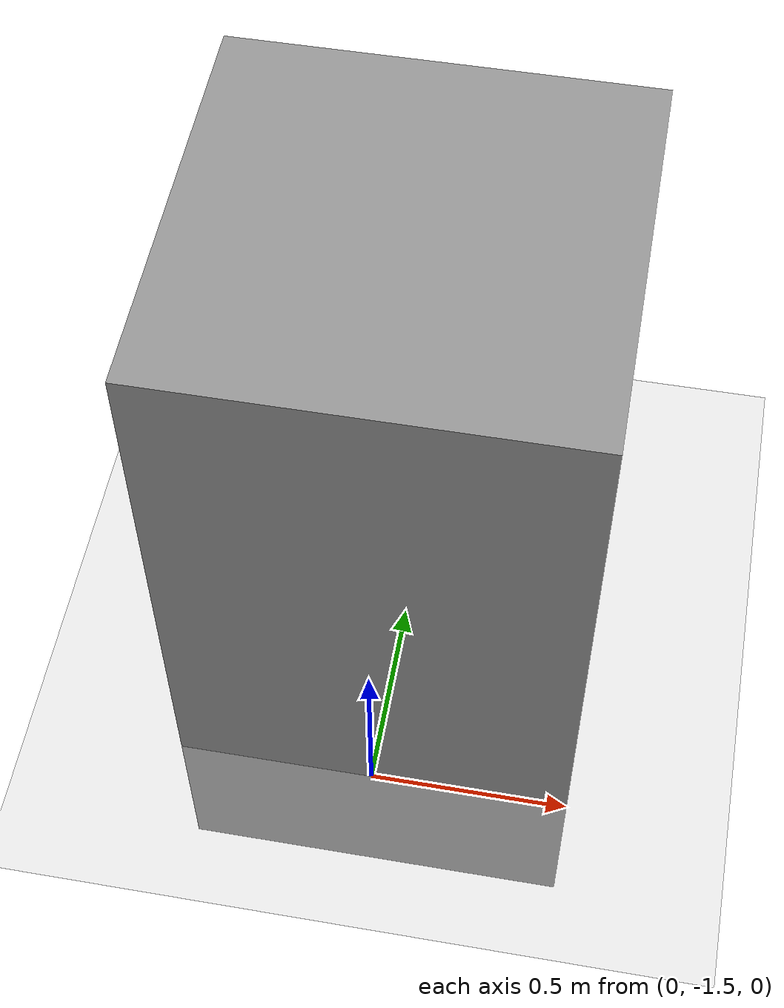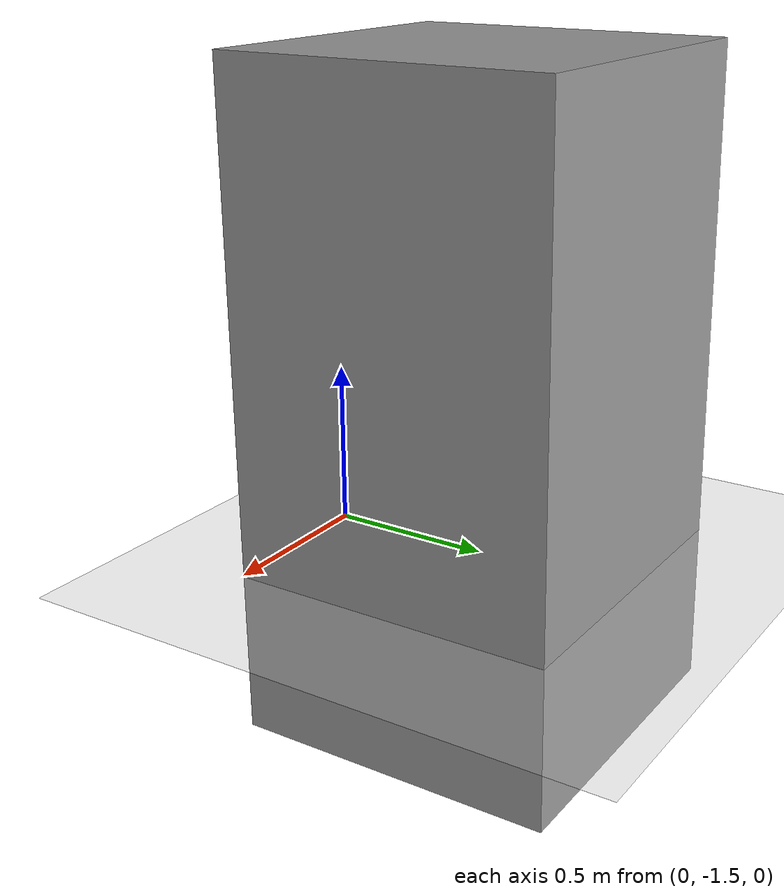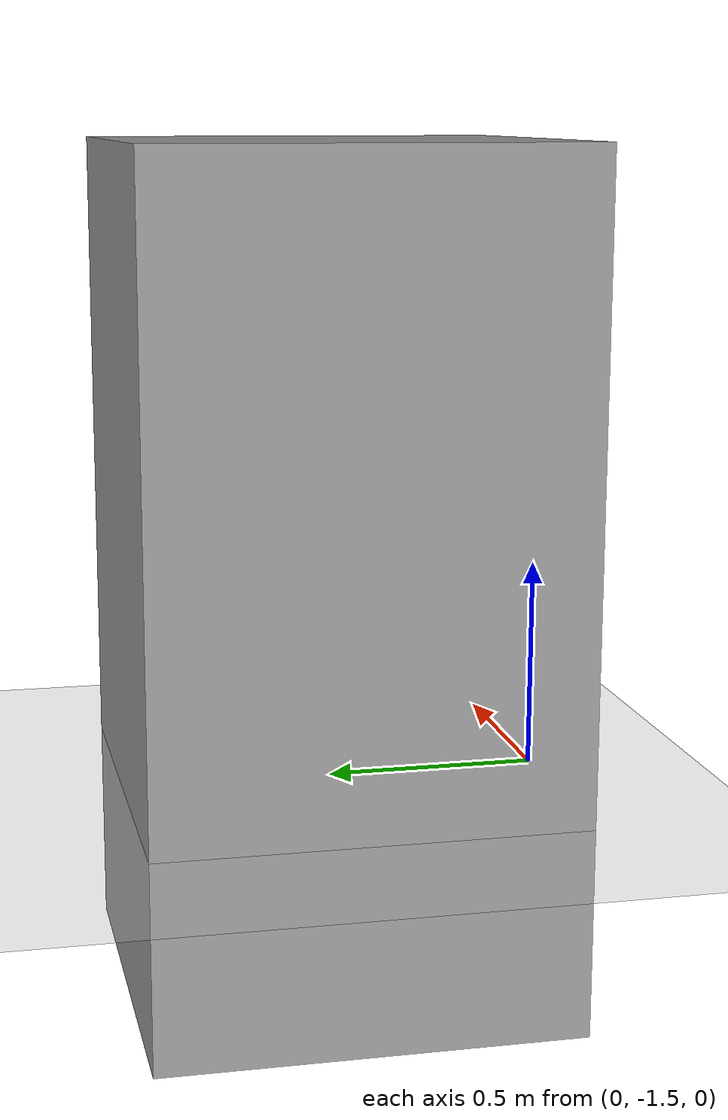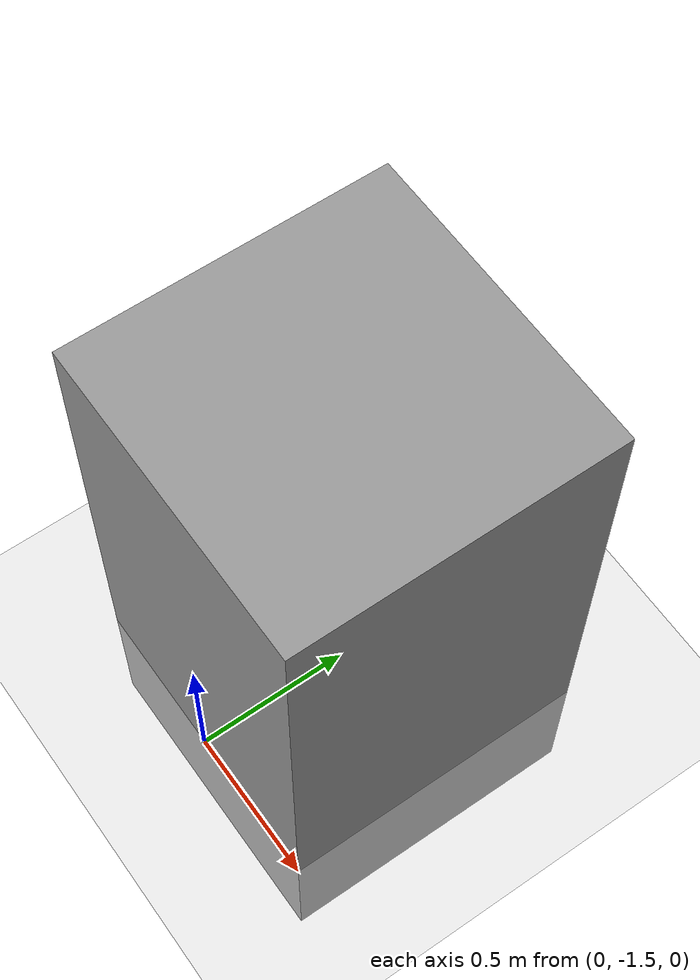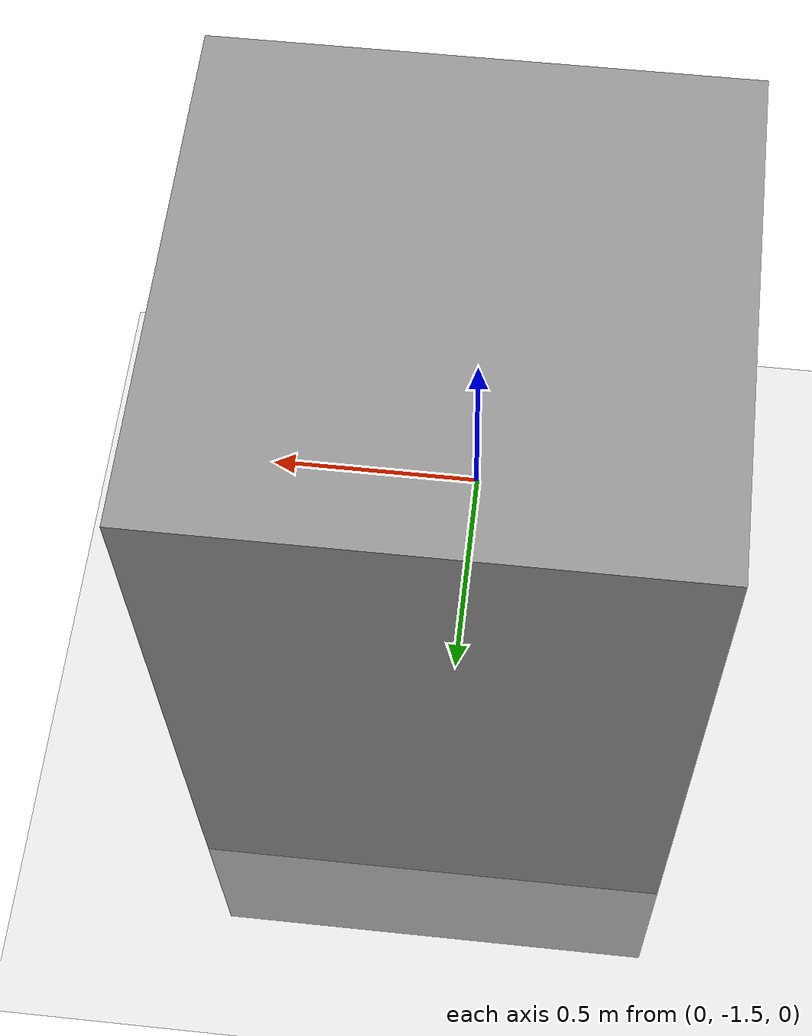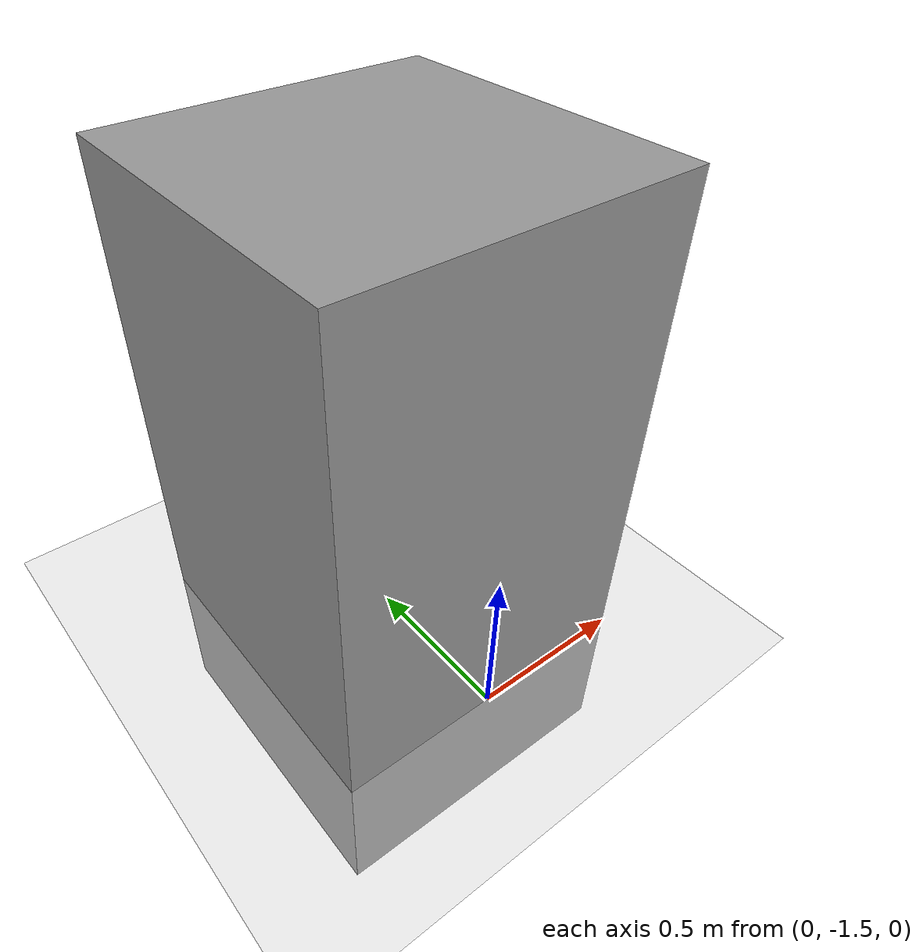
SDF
<sdf version="1.4">
 <world name="default">
  <light name="sun" type="directional">
   <pose>0 0 10 0 -0 0</pose>
   <diffuse>0.8 0.8 0.8 1</diffuse>
   <specular>0.2 0.2 0.2 1</specular>
   <attenuation>
    <range>1000</range>
    <constant>0.9</constant>
    <linear>0.01</linear>
    <quadratic>0.001</quadratic>
   </attenuation>
   <direction>-0.5 0.1 -0.9</direction>
  </light>
  <model name="ground_plane">
   <static>1</static>
   <link name="link">
    <collision name="collision">
     <geometry><plane><normal>0 0 1</normal><size>100 100</size></plane></geometry>
     <surface><friction><ode><mu>100</mu><mu2>50</mu2></ode></friction></surface>
    </collision>
    <visual name="visual">
     <cast_shadows>0</cast_shadows>
     <geometry><plane><normal>0 0 1</normal><size>100 100</size></plane></geometry>
     <material>
      <script><uri>file://media/materials/scripts/gazebo.material</uri><name>Gazebo/Grey</name></script>
     </material>
    </visual>
    <velocity_decay><linear>0</linear><angular>0</angular></velocity_decay>
   </link>
  </model>
  <physics type="ode">
   <max_step_size>0.001</max_step_size>
   <real_time_factor>1</real_time_factor>
   <real_time_update_rate>1000</real_time_update_rate>
   <gravity>0 0 -15.0</gravity>
  </physics>
  <scene><ambient>0.4 0.4 0.4 1</ambient><background>0.7 0.7 0.7 1</background><shadows>1</shadows></scene>
  <spherical_coordinates>
   <surface_model>EARTH_WGS84</surface_model>
   <latitude_deg>0</latitude_deg>
   <longitude_deg>0</longitude_deg>
   <elevation>0</elevation>
   <heading_deg>0</heading_deg>
  </spherical_coordinates>
  <model name="unit_box_0">
   <pose>-0 -1 0.5 0 -0 0</pose>
   <link name="link">
    <inertial>
     <mass>1</mass>
     <inertia><ixx>1</ixx><ixy>0</ixy><ixz>0</ixz><iyy>1</iyy><iyz>0</iyz><izz>2</izz></inertia>
    </inertial>
    <collision name="collision"><geometry><box><size>1.000000 1.000000 2</size></box></geometry></collision>
    <visual name="visual">
     <geometry><box><size>1.000000 1.000000 2</size></box></geometry>
     <material>
      <script><uri>file://media/materials/scripts/gazebo.material</uri><name>Gazebo/Grey</name></script>
     </material>
    </visual>
    <velocity_decay><linear>0</linear><angular>0</angular></velocity_decay>
   </link>
   <static>true</static>
  </model>
  <model name="unit_box_1">
   <pose>-0 -1 0.5 0 -0 0</pose>
   <link name="link">
    <inertial>
     <mass>1</mass>
     <inertia><ixx>1</ixx><ixy>0</ixy><ixz>0</ixz><iyy>1</iyy><iyz>0</iyz><izz>2</izz></inertia>
    </inertial>
    <collision name="collision"><geometry><box><size>1.000000 1.000000 2</size></box></geometry></collision>
    <visual name="visual">
     <geometry><box><size>1.000000 1.000000 2</size></box></geometry>
     <material>
      <script><uri>file://media/materials/scripts/gazebo.material</uri><name>Gazebo/Grey</name></script>
     </material>
    </visual>
    <velocity_decay><linear>0</linear><angular>0</angular></velocity_decay>
   </link>
   <static>true</static>
  </model>
  <model name="unit_box_2">
   <pose>-0 -1 0.5 0 -0 0</pose>
   <link name="link">
    <inertial>
     <mass>1</mass>
     <inertia><ixx>1</ixx><ixy>0</ixy><ixz>0</ixz><iyy>1</iyy><iyz>0</iyz><izz>2</izz></inertia>
    </inertial>
    <collision name="collision"><geometry><box><size>1.000000 1.000000 2</size></box></geometry></collision>
    <visual name="visual">
     <geometry><box><size>1.000000 1.000000 2</size></box></geometry>
     <material>
      <script><uri>file://media/materials/scripts/gazebo.material</uri><name>Gazebo/Grey</name></script>
     </material>
    </visual>
    <velocity_decay><linear>0</linear><angular>0</angular></velocity_decay>
   </link>
   <static>true</static>
  </model>
  <model name="unit_box_3">
   <pose>-0 -1 0.5 0 -0 0</pose>
   <link name="link">
    <inertial>
     <mass>1</mass>
     <inertia><ixx>1</ixx><ixy>0</ixy><ixz>0</ixz><iyy>1</iyy><iyz>0</iyz><izz>2</izz></inertia>
    </inertial>
    <collision name="collision"><geometry><box><size>1.000000 1.000000 2</size></box></geometry></collision>
    <visual name="visual">
     <geometry><box><size>1.000000 1.000000 2</size></box></geometry>
     <material>
      <script><uri>file://media/materials/scripts/gazebo.material</uri><name>Gazebo/Grey</name></script>
     </material>
    </visual>
    <velocity_decay><linear>0</linear><angular>0</angular></velocity_decay>
   </link>
   <static>true</static>
  </model>
  <model name="unit_box_4">
   <pose>-0 -1 0.5 0 -0 0</pose>
   <link name="link">
    <inertial>
     <mass>1</mass>
     <inertia><ixx>1</ixx><ixy>0</ixy><ixz>0</ixz><iyy>1</iyy><iyz>0</iyz><izz>2</izz></inertia>
    </inertial>
    <collision name="collision"><geometry><box><size>1.000000 1.000000 2</size></box></geometry></collision>
    <visual name="visual">
     <geometry><box><size>1.000000 1.000000 2</size></box></geometry>
     <material>
      <script><uri>file://media/materials/scripts/gazebo.material</uri><name>Gazebo/Grey</name></script>
     </material>
    </visual>
    <velocity_decay><linear>0</linear><angular>0</angular></velocity_decay>
   </link>
   <static>true</static>
  </model>
  <model name="unit_box_5">
   <pose>-0 -1 0.5 0 -0 0</pose>
   <link name="link">
    <inertial>
     <mass>1</mass>
     <inertia><ixx>1</ixx><ixy>0</ixy><ixz>0</ixz><iyy>1</iyy><iyz>0</iyz><izz>2</izz></inertia>
    </inertial>
    <collision name="collision"><geometry><box><size>1.000000 1.000000 2</size></box></geometry></collision>
    <visual name="visual">
     <geometry><box><size>1.000000 1.000000 2</size></box></geometry>
     <material>
      <script><uri>file://media/materials/scripts/gazebo.material</uri><name>Gazebo/Grey</name></script>
     </material>
    </visual>
    <velocity_decay><linear>0</linear><angular>0</angular></velocity_decay>
   </link>
   <static>true</static>
  </model>
  <model name="unit_box_6">
   <pose>-0 -1 0.5 0 -0 0</pose>
   <link name="link">
    <inertial>
     <mass>1</mass>
     <inertia><ixx>1</ixx><ixy>0</ixy><ixz>0</ixz><iyy>1</iyy><iyz>0</iyz><izz>2</izz></inertia>
    </inertial>
    <collision name="collision"><geometry><box><size>1.000000 1.000000 2</size></box></geometry></collision>
    <visual name="visual">
     <geometry><box><size>1.000000 1.000000 2</size></box></geometry>
     <material>
      <script><uri>file://media/materials/scripts/gazebo.material</uri><name>Gazebo/Grey</name></script>
     </material>
    </visual>
    <velocity_decay><linear>0</linear><angular>0</angular></velocity_decay>
   </link>
   <static>true</static>
  </model>
  <model name="unit_box_7">
   <pose>-0 -1 0.5 0 -0 0</pose>
   <link name="link">
    <inertial>
     <mass>1</mass>
     <inertia><ixx>1</ixx><ixy>0</ixy><ixz>0</ixz><iyy>1</iyy><iyz>0</iyz><izz>2</izz></inertia>
    </inertial>
    <collision name="collision"><geometry><box><size>1.000000 1.000000 2</size></box></geometry></collision>
    <visual name="visual">
     <geometry><box><size>1.000000 1.000000 2</size></box></geometry>
     <material>
      <script><uri>file://media/materials/scripts/gazebo.material</uri><name>Gazebo/Grey</name></script>
     </material>
    </visual>
    <velocity_decay><linear>0</linear><angular>0</angular></velocity_decay>
   </link>
   <static>true</static>
  </model>
  <model name="unit_box_8">
   <pose>-0 -1 0.5 0 -0 0</pose>
   <link name="link">
    <inertial>
     <mass>1</mass>
     <inertia><ixx>1</ixx><ixy>0</ixy><ixz>0</ixz><iyy>1</iyy><iyz>0</iyz><izz>2</izz></inertia>
    </inertial>
    <collision name="collision"><geometry><box><size>1.000000 1.000000 2</size></box></geometry></collision>
    <visual name="visual">
     <geometry><box><size>1.000000 1.000000 2</size></box></geometry>
     <material>
      <script><uri>file://media/materials/scripts/gazebo.material</uri><name>Gazebo/Grey</name></script>
     </material>
    </visual>
    <velocity_decay><linear>0</linear><angular>0</angular></velocity_decay>
   </link>
   <static>true</static>
  </model>
  <model name="unit_box_9">
   <pose>-0 -1 0.5 0 -0 0</pose>
   <link name="link">
    <inertial>
     <mass>1</mass>
     <inertia><ixx>1</ixx><ixy>0</ixy><ixz>0</ixz><iyy>1</iyy><iyz>0</iyz><izz>2</izz></inertia>
    </inertial>
    <collision name="collision"><geometry><box><size>1.000000 1.000000 2</size></box></geometry></collision>
    <visual name="visual">
     <geometry><box><size>1.000000 1.000000 2</size></box></geometry>
     <material>
      <script><uri>file://media/materials/scripts/gazebo.material</uri><name>Gazebo/Grey</name></script>
     </material>
    </visual>
    <velocity_decay><linear>0</linear><angular>0</angular></velocity_decay>
   </link>
   <static>true</static>
  </model>
  <model name="unit_box_10">
   <pose>-0 -1 0.5 0 -0 0</pose>
   <link name="link">
    <inertial>
     <mass>1</mass>
     <inertia><ixx>1</ixx><ixy>0</ixy><ixz>0</ixz><iyy>1</iyy><iyz>0</iyz><izz>2</izz></inertia>
    </inertial>
    <collision name="collision"><geometry><box><size>1.000000 1.000000 2</size></box></geometry></collision>
    <visual name="visual">
     <geometry><box><size>1.000000 1.000000 2</size></box></geometry>
     <material>
      <script><uri>file://media/materials/scripts/gazebo.material</uri><name>Gazebo/Grey</name></script>
     </material>
    </visual>
    <velocity_decay><linear>0</linear><angular>0</angular></velocity_decay>
   </link>
   <static>true</static>
  </model>
  <model name="unit_box_11">
   <pose>-0 -1 0.5 0 -0 0</pose>
   <link name="link">
    <inertial>
     <mass>1</mass>
     <inertia><ixx>1</ixx><ixy>0</ixy><ixz>0</ixz><iyy>1</iyy><iyz>0</iyz><izz>2</izz></inertia>
    </inertial>
    <collision name="collision"><geometry><box><size>1.000000 1.000000 2</size></box></geometry></collision>
    <visual name="visual">
     <geometry><box><size>1.000000 1.000000 2</size></box></geometry>
     <material>
      <script><uri>file://media/materials/scripts/gazebo.material</uri><name>Gazebo/Grey</name></script>
     </material>
    </visual>
    <velocity_decay><linear>0</linear><angular>0</angular></velocity_decay>
   </link>
   <static>true</static>
  </model>
  <model name="unit_box_12">
   <pose>-0 -1 0.5 0 -0 0</pose>
   <link name="link">
    <inertial>
     <mass>1</mass>
     <inertia><ixx>1</ixx><ixy>0</ixy><ixz>0</ixz><iyy>1</iyy><iyz>0</iyz><izz>2</izz></inertia>
    </inertial>
    <collision name="collision"><geometry><box><size>1.000000 1.000000 2</size></box></geometry></collision>
    <visual name="visual">
     <geometry><box><size>1.000000 1.000000 2</size></box></geometry>
     <material>
      <script><uri>file://media/materials/scripts/gazebo.material</uri><name>Gazebo/Grey</name></script>
     </material>
    </visual>
    <velocity_decay><linear>0</linear><angular>0</angular></velocity_decay>
   </link>
   <static>true</static>
  </model>
  <model name="unit_box_13">
   <pose>-0 -1 0.5 0 -0 0</pose>
   <link name="link">
    <inertial>
     <mass>1</mass>
     <inertia><ixx>1</ixx><ixy>0</ixy><ixz>0</ixz><iyy>1</iyy><iyz>0</iyz><izz>2</izz></inertia>
    </inertial>
    <collision name="collision"><geometry><box><size>1.000000 1.000000 2</size></box></geometry></collision>
    <visual name="visual">
     <geometry><box><size>1.000000 1.000000 2</size></box></geometry>
     <material>
      <script><uri>file://media/materials/scripts/gazebo.material</uri><name>Gazebo/Grey</name></script>
     </material>
    </visual>
    <velocity_decay><linear>0</linear><angular>0</angular></velocity_decay>
   </link>
   <static>true</static>
  </model>
  <model name="unit_box_14">
   <pose>-0 -1 0.5 0 -0 0</pose>
   <link name="link">
    <inertial>
     <mass>1</mass>
     <inertia><ixx>1</ixx><ixy>0</ixy><ixz>0</ixz><iyy>1</iyy><iyz>0</iyz><izz>2</izz></inertia>
    </inertial>
    <collision name="collision"><geometry><box><size>1.000000 1.000000 2</size></box></geometry></collision>
    <visual name="visual">
     <geometry><box><size>1.000000 1.000000 2</size></box></geometry>
     <material>
      <script><uri>file://media/materials/scripts/gazebo.material</uri><name>Gazebo/Grey</name></script>
     </material>
    </visual>
    <velocity_decay><linear>0</linear><angular>0</angular></velocity_decay>
   </link>
   <static>true</static>
  </model>
  <model name="unit_box_15">
   <pose>-0 -1 0.5 0 -0 0</pose>
   <link name="link">
    <inertial>
     <mass>1</mass>
     <inertia><ixx>1</ixx><ixy>0</ixy><ixz>0</ixz><iyy>1</iyy><iyz>0</iyz><izz>2</izz></inertia>
    </inertial>
    <collision name="collision"><geometry><box><size>1.000000 1.000000 2</size></box></geometry></collision>
    <visual name="visual">
     <geometry><box><size>1.000000 1.000000 2</size></box></geometry>
     <material>
      <script><uri>file://media/materials/scripts/gazebo.material</uri><name>Gazebo/Grey</name></script>
     </material>
    </visual>
    <velocity_decay><linear>0</linear><angular>0</angular></velocity_decay>
   </link>
   <static>true</static>
  </model>
  <model name="unit_box_16">
   <pose>-0 -1 0.5 0 -0 0</pose>
   <link name="link">
    <inertial>
     <mass>1</mass>
     <inertia><ixx>1</ixx><ixy>0</ixy><ixz>0</ixz><iyy>1</iyy><iyz>0</iyz><izz>2</izz></inertia>
    </inertial>
    <collision name="collision"><geometry><box><size>1.000000 1.000000 2</size></box></geometry></collision>
    <visual name="visual">
     <geometry><box><size>1.000000 1.000000 2</size></box></geometry>
     <material>
      <script><uri>file://media/materials/scripts/gazebo.material</uri><name>Gazebo/Grey</name></script>
     </material>
    </visual>
    <velocity_decay><linear>0</linear><angular>0</angular></velocity_decay>
   </link>
   <static>true</static>
  </model>
  <model name="unit_box_17">
   <pose>-0 -1 0.5 0 -0 0</pose>
   <link name="link">
    <inertial>
     <mass>1</mass>
     <inertia><ixx>1</ixx><ixy>0</ixy><ixz>0</ixz><iyy>1</iyy><iyz>0</iyz><izz>2</izz></inertia>
    </inertial>
    <collision name="collision"><geometry><box><size>1.000000 1.000000 2</size></box></geometry></collision>
    <visual name="visual">
     <geometry><box><size>1.000000 1.000000 2</size></box></geometry>
     <material>
      <script><uri>file://media/materials/scripts/gazebo.material</uri><name>Gazebo/Grey</name></script>
     </material>
    </visual>
    <velocity_decay><linear>0</linear><angular>0</angular></velocity_decay>
   </link>
   <static>true</static>
  </model>
  <model name="unit_box_18">
   <pose>-0 -1 0.5 0 -0 0</pose>
   <link name="link">
    <inertial>
     <mass>1</mass>
     <inertia><ixx>1</ixx><ixy>0</ixy><ixz>0</ixz><iyy>1</iyy><iyz>0</iyz><izz>2</izz></inertia>
    </inertial>
    <collision name="collision"><geometry><box><size>1.000000 1.000000 2</size></box></geometry></collision>
    <visual name="visual">
     <geometry><box><size>1.000000 1.000000 2</size></box></geometry>
     <material>
      <script><uri>file://media/materials/scripts/gazebo.material</uri><name>Gazebo/Grey</name></script>
     </material>
    </visual>
    <velocity_decay><linear>0</linear><angular>0</angular></velocity_decay>
   </link>
   <static>true</static>
  </model>
  <model name="unit_box_19">
   <pose>-0 -1 0.5 0 -0 0</pose>
   <link name="link">
    <inertial>
     <mass>1</mass>
     <inertia><ixx>1</ixx><ixy>0</ixy><ixz>0</ixz><iyy>1</iyy><iyz>0</iyz><izz>2</izz></inertia>
    </inertial>
    <collision name="collision"><geometry><box><size>1.000000 1.000000 2</size></box></geometry></collision>
    <visual name="visual">
     <geometry><box><size>1.000000 1.000000 2</size></box></geometry>
     <material>
      <script><uri>file://media/materials/scripts/gazebo.material</uri><name>Gazebo/Grey</name></script>
     </material>
    </visual>
    <velocity_decay><linear>0</linear><angular>0</angular></velocity_decay>
   </link>
   <static>true</static>
  </model>
  <model name="unit_box_20">
   <pose>-0 -1 0.5 0 -0 0</pose>
   <link name="link">
    <inertial>
     <mass>1</mass>
     <inertia><ixx>1</ixx><ixy>0</ixy><ixz>0</ixz><iyy>1</iyy><iyz>0</iyz><izz>2</izz></inertia>
    </inertial>
    <collision name="collision"><geometry><box><size>1.000000 1.000000 2</size></box></geometry></collision>
    <visual name="visual">
     <geometry><box><size>1.000000 1.000000 2</size></box></geometry>
     <material>
      <script><uri>file://media/materials/scripts/gazebo.material</uri><name>Gazebo/Grey</name></script>
     </material>
    </visual>
    <velocity_decay><linear>0</linear><angular>0</angular></velocity_decay>
   </link>
   <static>true</static>
  </model>
  <model name="unit_box_21">
   <pose>-0 -1 0.5 0 -0 0</pose>
   <link name="link">
    <inertial>
     <mass>1</mass>
     <inertia><ixx>1</ixx><ixy>0</ixy><ixz>0</ixz><iyy>1</iyy><iyz>0</iyz><izz>2</izz></inertia>
    </inertial>
    <collision name="collision"><geometry><box><size>1.000000 1.000000 2</size></box></geometry></collision>
    <visual name="visual">
     <geometry><box><size>1.000000 1.000000 2</size></box></geometry>
     <material>
      <script><uri>file://media/materials/scripts/gazebo.material</uri><name>Gazebo/Grey</name></script>
     </material>
    </visual>
    <velocity_decay><linear>0</linear><angular>0</angular></velocity_decay>
   </link>
   <static>true</static>
  </model>
  <model name="unit_box_22">
   <pose>-0 -1 0.5 0 -0 0</pose>
   <link name="link">
    <inertial>
     <mass>1</mass>
     <inertia><ixx>1</ixx><ixy>0</ixy><ixz>0</ixz><iyy>1</iyy><iyz>0</iyz><izz>2</izz></inertia>
    </inertial>
    <collision name="collision"><geometry><box><size>1.000000 1.000000 2</size></box></geometry></collision>
    <visual name="visual">
     <geometry><box><size>1.000000 1.000000 2</size></box></geometry>
     <material>
      <script><uri>file://media/materials/scripts/gazebo.material</uri><name>Gazebo/Grey</name></script>
     </material>
    </visual>
    <velocity_decay><linear>0</linear><angular>0</angular></velocity_decay>
   </link>
   <static>true</static>
  </model>
  <model name="unit_box_23">
   <pose>-0 -1 0.5 0 -0 0</pose>
   <link name="link">
    <inertial>
     <mass>1</mass>
     <inertia><ixx>1</ixx><ixy>0</ixy><ixz>0</ixz><iyy>1</iyy><iyz>0</iyz><izz>2</izz></inertia>
    </inertial>
    <collision name="collision"><geometry><box><size>1.000000 1.000000 2</size></box></geometry></collision>
    <visual name="visual">
     <geometry><box><size>1.000000 1.000000 2</size></box></geometry>
     <material>
      <script><uri>file://media/materials/scripts/gazebo.material</uri><name>Gazebo/Grey</name></script>
     </material>
    </visual>
    <velocity_decay><linear>0</linear><angular>0</angular></velocity_decay>
   </link>
   <static>true</static>
  </model>
  <model name="unit_box_24">
   <pose>-0 -1 0.5 0 -0 0</pose>
   <link name="link">
    <inertial>
     <mass>1</mass>
     <inertia><ixx>1</ixx><ixy>0</ixy><ixz>0</ixz><iyy>1</iyy><iyz>0</iyz><izz>2</izz></inertia>
    </inertial>
    <collision name="collision"><geometry><box><size>1.000000 1.000000 2</size></box></geometry></collision>
    <visual name="visual">
     <geometry><box><size>1.000000 1.000000 2</size></box></geometry>
     <material>
      <script><uri>file://media/materials/scripts/gazebo.material</uri><name>Gazebo/Grey</name></script>
     </material>
    </visual>
    <velocity_decay><linear>0</linear><angular>0</angular></velocity_decay>
   </link>
   <static>true</static>
  </model>
  <model name="unit_box_25">
   <pose>-0 -1 0.5 0 -0 0</pose>
   <link name="link">
    <inertial>
     <mass>1</mass>
     <inertia><ixx>1</ixx><ixy>0</ixy><ixz>0</ixz><iyy>1</iyy><iyz>0</iyz><izz>2</izz></inertia>
    </inertial>
    <collision name="collision"><geometry><box><size>1.000000 1.000000 2</size></box></geometry></collision>
    <visual name="visual">
     <geometry><box><size>1.000000 1.000000 2</size></box></geometry>
     <material>
      <script><uri>file://media/materials/scripts/gazebo.material</uri><name>Gazebo/Grey</name></script>
     </material>
    </visual>
    <velocity_decay><linear>0</linear><angular>0</angular></velocity_decay>
   </link>
   <static>true</static>
  </model>
  <model name="unit_box_26">
   <pose>-0 -1 0.5 0 -0 0</pose>
   <link name="link">
    <inertial>
     <mass>1</mass>
     <inertia><ixx>1</ixx><ixy>0</ixy><ixz>0</ixz><iyy>1</iyy><iyz>0</iyz><izz>2</izz></inertia>
    </inertial>
    <collision name="collision"><geometry><box><size>1.000000 1.000000 2</size></box></geometry></collision>
    <visual name="visual">
     <geometry><box><size>1.000000 1.000000 2</size></box></geometry>
     <material>
      <script><uri>file://media/materials/scripts/gazebo.material</uri><name>Gazebo/Grey</name></script>
     </material>
    </visual>
    <velocity_decay><linear>0</linear><angular>0</angular></velocity_decay>
   </link>
   <static>true</static>
  </model>
  <model name="unit_box_27">
   <pose>-0 -1 0.5 0 -0 0</pose>
   <link name="link">
    <inertial>
     <mass>1</mass>
     <inertia><ixx>1</ixx><ixy>0</ixy><ixz>0</ixz><iyy>1</iyy><iyz>0</iyz><izz>2</izz></inertia>
    </inertial>
    <collision name="collision"><geometry><box><size>1.000000 1.000000 2</size></box></geometry></collision>
    <visual name="visual">
     <geometry><box><size>1.000000 1.000000 2</size></box></geometry>
     <material>
      <script><uri>file://media/materials/scripts/gazebo.material</uri><name>Gazebo/Grey</name></script>
     </material>
    </visual>
    <velocity_decay><linear>0</linear><angular>0</angular></velocity_decay>
   </link>
   <static>true</static>
  </model>
  <model name="unit_box_28">
   <pose>-0 -1 0.5 0 -0 0</pose>
   <link name="link">
    <inertial>
     <mass>1</mass>
     <inertia><ixx>1</ixx><ixy>0</ixy><ixz>0</ixz><iyy>1</iyy><iyz>0</iyz><izz>2</izz></inertia>
    </inertial>
    <collision name="collision"><geometry><box><size>1.000000 1.000000 2</size></box></geometry></collision>
    <visual name="visual">
     <geometry><box><size>1.000000 1.000000 2</size></box></geometry>
     <material>
      <script><uri>file://media/materials/scripts/gazebo.material</uri><name>Gazebo/Grey</name></script>
     </material>
    </visual>
    <velocity_decay><linear>0</linear><angular>0</angular></velocity_decay>
   </link>
   <static>true</static>
  </model>
  <model name="unit_box_29">
   <pose>-0 -1 0.5 0 -0 0</pose>
   <link name="link">
    <inertial>
     <mass>1</mass>
     <inertia><ixx>1</ixx><ixy>0</ixy><ixz>0</ixz><iyy>1</iyy><iyz>0</iyz><izz>2</izz></inertia>
    </inertial>
    <collision name="collision"><geometry><box><size>1.000000 1.000000 2</size></box></geometry></collision>
    <visual name="visual">
     <geometry><box><size>1.000000 1.000000 2</size></box></geometry>
     <material>
      <script><uri>file://media/materials/scripts/gazebo.material</uri><name>Gazebo/Grey</name></script>
     </material>
    </visual>
    <velocity_decay><linear>0</linear><angular>0</angular></velocity_decay>
   </link>
   <static>true</static>
  </model>
 </world>
</sdf>
